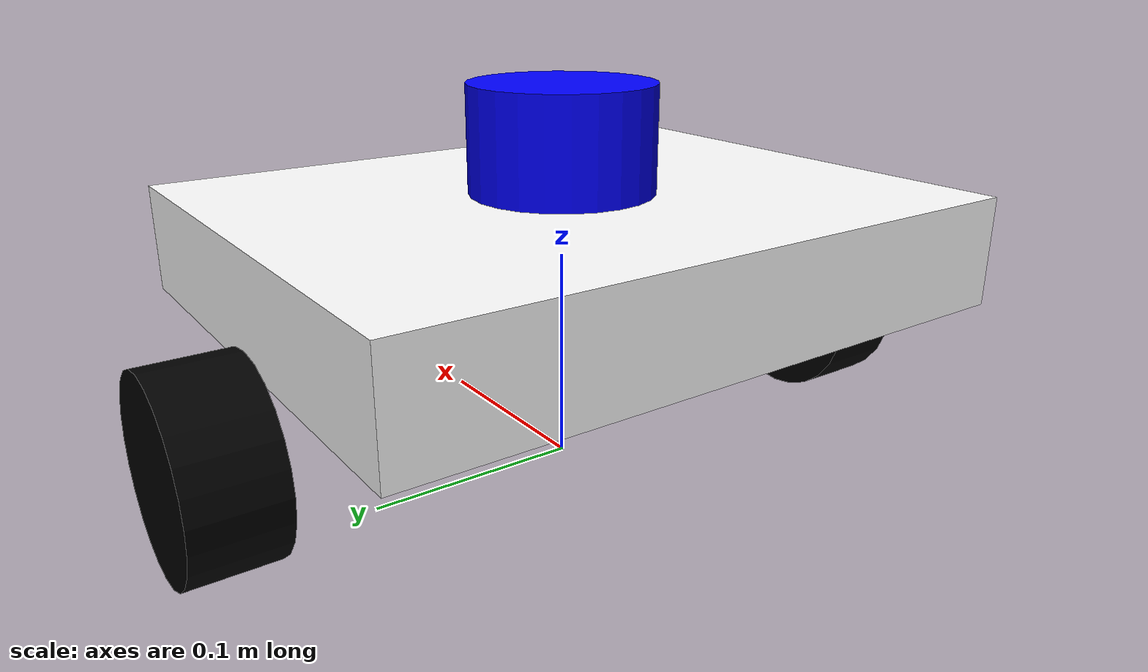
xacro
<?xml version="1.0"?>
<robot xmlns:xacro="http://ros.org/wiki/xacro" name="mobile_robot">
    <!-- COLOR -->
    <material name="white">
        <color rgba="1 1 1 1" />
    </material>

    <material name="black">
        <color rgba="0 0 0 1" />
    </material>

    <material name="blue">
        <color rgba="0 0 1 1"/>
    </material>

    <!-- BASE -->
    <link name="base_link">
    </link>

    <!-- BODY LINK -->
    <link name="body">
        <visual>
            <geometry>
                <box size="0.24 0.3 0.05"/>
            </geometry>
            <origin xyz="0 0 0" rpy="0 0 0"/>
            <material name="white"/>
        </visual>
        <collision>
            <geometry>
                <box size="0.24 0.3 0.05"/>
            </geometry>
        </collision>
        <inertia
            ixx="0.00025" ixy="0" ixz="0"
            iyy="0.00025" iyz="0"
            izz="0.00025"/>
    </link>

    <joint name="body_joint" type="fixed">
        <parent link="base_link"/>
        <child link="body"/>
        <origin xyz="0 0 0.105" rpy="0 0 0"/>
    </joint>

    <!-- LEFT WHEEL LINK -->
    <link name="left_wheel">
        <visual>
            <geometry>
                <cylinder length="0.04" radius="0.0435"/>
            </geometry>
            <origin xyz="0 0 0" rpy="1.5708 0 0"/>
            <material name="black"/>
        </visual>
        <collision>
            <geometry>
                <cylinder length="0.04" radius="0.0435"/>
            </geometry>
        </collision>
        <inertia
            ixx="0.0001" ixy="0" ixz="0"
            iyy="0.0001" iyz="0"
            izz="0.0001"/>
    </link>

    <joint name="left_wheel_joint" type="continuous">
        <parent link="body"/>
        <child link="left_wheel"/>
        <axis xyz="0 1 0"/>
        <origin xyz="0 0.17 -0.0615"/>
    </joint>

    <!-- RIGHT WHEEL LINK -->
    <link name="right_wheel">
        <visual>
            <geometry>
                <cylinder length="0.04" radius="0.0435"/>
            </geometry>
            <origin xyz="0 0 0" rpy="1.5708 0 0"/>
            <material name="black"/>
        </visual>
        <collision>
            <geometry>
                <cylinder length="0.04" radius="0.0435"/>
            </geometry>
        </collision>
        <inertia
            ixx="0.0001" ixy="0" ixz="0"
            iyy="0.0001" iyz="0"
            izz="0.0001"/>
    </link>

    <joint name="right_wheel_joint" type="continuous">
        <parent link="body"/>
        <child link="right_wheel"/>
        <axis xyz="0 1 0"/>
        <origin xyz="0 -0.17 -0.0615"/>
    </joint>

    <!-- LIDAR LINK -->
    <link name="lidar">
        <visual>
            <geometry>
                <cylinder length="0.0737" radius="0.0425"/>
            </geometry>
            <origin xyz="0 0 0"/>
            <material name="blue"/>
        </visual>
        <collision>
            <geometry>
                <cylinder length="0.0737" radius="0.0425"/>
            </geometry>
        </collision>
        <inertia
            ixx="0.00005" ixy="0" ixz="0"
            iyy="0.00005" iyz="0"
            izz="0.00005"/>
    </link>

    <joint name="lidar_joint" type="fixed">
        <parent link="body"/>
        <child link="lidar"/>
        <origin xyz="0 0 0.03685"/>
    </joint>

    <!-- CAMERA LINK -->
    <link name="camera">
        <visual>
            <geometry>
                <box size="0.025 0.023 0.009"/>
            </geometry>
            <origin xyz="0 0 0" rpy="0 1.5708 0"/>
            <material name="blue"/>
        </visual>
        <collision>
            <geometry>
                <box size="0.025 0.023 0.009"/>
            </geometry>
        </collision>
        <inertia
            ixx="0.000001" ixy="0" ixz="0"
            iyy="0.000001" iyz="0"
            izz="0.000001"/>
    </link>

    <joint name="camera_joint" type="fixed">
        <parent link="body"/>
        <child link="camera"/>
        <origin xyz="0.12 0 0"/>
    </joint>
</robot>
